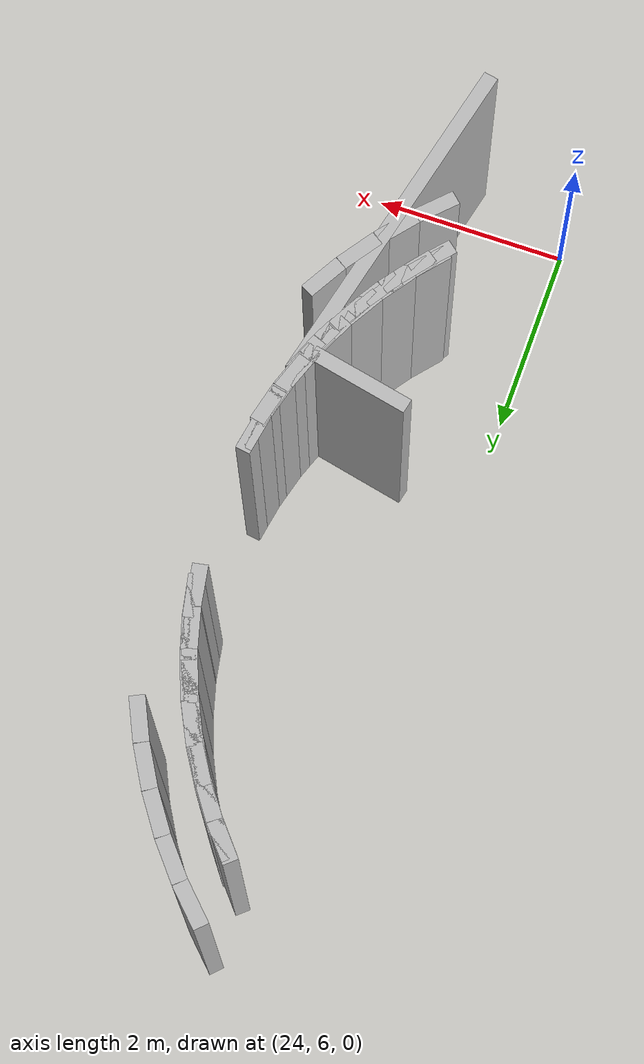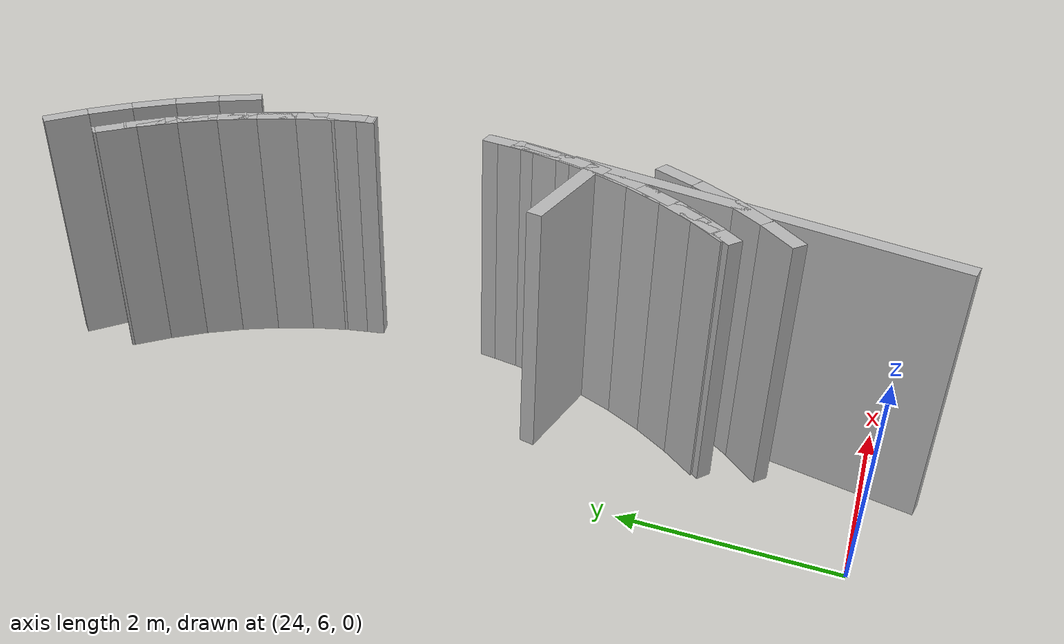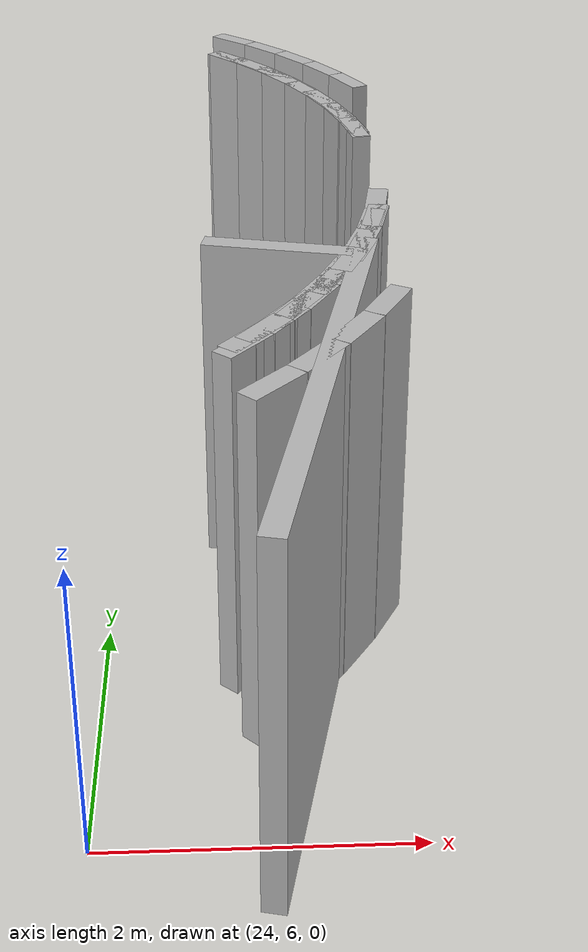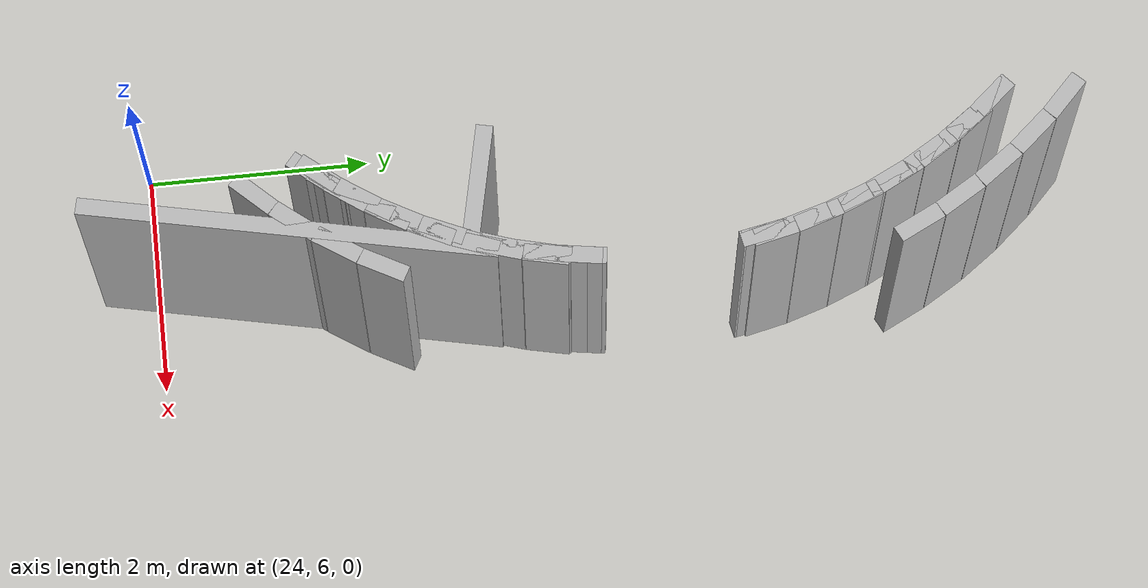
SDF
<sdf version="1.6">
 <model name="sps_2304">
  <static>1</static>
  <allow_auto_disable>0</allow_auto_disable>
  <link name="Wall10502">
   <collision name="collision"><geometry><box><size>0.39937 0.15 2.5</size></box></geometry></collision>
   <visual name="visual">
    <geometry><box><size>0.39937 0.15 2.5</size></box></geometry>
    <transparency>0.0</transparency>
   </visual>
   <pose>24.9521 7.53938 1.25 0 -0 0.861225</pose>
  </link>
  <link name="Wall10503">
   <collision name="collision"><geometry><box><size>0.399517 0.15 2.5</size></box></geometry></collision>
   <visual name="visual">
    <geometry><box><size>0.399517 0.15 2.5</size></box></geometry>
    <transparency>0.0</transparency>
   </visual>
   <pose>25.1987 7.85319 1.25 0 -0 0.948593</pose>
  </link>
  <link name="Wall10504">
   <collision name="collision"><geometry><box><size>0.399497 0.15 2.5</size></box></geometry></collision>
   <visual name="visual">
    <geometry><box><size>0.399497 0.15 2.5</size></box></geometry>
    <transparency>0.0</transparency>
   </visual>
   <pose>25.4169 8.18739 1.25 0 -0 1.03617</pose>
  </link>
  <link name="Wall10505">
   <collision name="collision"><geometry><box><size>0.399527 0.15 2.5</size></box></geometry></collision>
   <visual name="visual">
    <geometry><box><size>0.399527 0.15 2.5</size></box></geometry>
    <transparency>0.0</transparency>
   </visual>
   <pose>25.605 8.53938 1.25 0 -0 1.12355</pose>
  </link>
  <link name="Wall10506">
   <collision name="collision"><geometry><box><size>0.399357 0.15 2.5</size></box></geometry></collision>
   <visual name="visual">
    <geometry><box><size>0.399357 0.15 2.5</size></box></geometry>
    <transparency>0.0</transparency>
   </visual>
   <pose>25.7617 8.90639 1.25 0 -0 1.21095</pose>
  </link>
  <link name="Wall10507">
   <collision name="collision"><geometry><box><size>3.65467 0.15 2.5</size></box></geometry></collision>
   <visual name="visual">
    <geometry><box><size>3.65467 0.15 2.5</size></box></geometry>
    <transparency>0.0</transparency>
   </visual>
   <pose>25.4461 7.30717 1.25 0 0 -1.78363</pose>
  </link>
  <link name="Wall10574">
   <collision name="collision"><geometry><box><size>0.39686 0.15 2.5</size></box></geometry></collision>
   <visual name="visual">
    <geometry><box><size>0.39686 0.15 2.5</size></box></geometry>
    <transparency>0.0</transparency>
   </visual>
   <pose>25.0906 13.2434 1.25 0 0 -0.916929</pose>
  </link>
  <link name="Wall10575">
   <collision name="collision"><geometry><box><size>0.396997 0.15 2.5</size></box></geometry></collision>
   <visual name="visual">
    <geometry><box><size>0.396997 0.15 2.5</size></box></geometry>
    <transparency>0.0</transparency>
   </visual>
   <pose>25.318 12.9185 1.25 0 0 -1.00335</pose>
  </link>
  <link name="Wall10576">
   <collision name="collision"><geometry><box><size>0.396928 0.15 2.5</size></box></geometry></collision>
   <visual name="visual">
    <geometry><box><size>0.396928 0.15 2.5</size></box></geometry>
    <transparency>0.0</transparency>
   </visual>
   <pose>25.5161 12.575 1.25 0 0 -1.09168</pose>
  </link>
  <link name="Wall10577">
   <collision name="collision"><geometry><box><size>0.396955 0.15 2.5</size></box></geometry></collision>
   <visual name="visual">
    <geometry><box><size>0.396955 0.15 2.5</size></box></geometry>
    <transparency>0.0</transparency>
   </visual>
   <pose>25.6836 12.2155 1.25 0 0 -1.17824</pose>
  </link>
  <link name="Wall10578">
   <collision name="collision"><geometry><box><size>0.396978 0.15 2.5</size></box></geometry></collision>
   <visual name="visual">
    <geometry><box><size>0.396978 0.15 2.5</size></box></geometry>
    <transparency>0.0</transparency>
   </visual>
   <pose>25.8192 11.8428 1.25 0 0 -1.26533</pose>
  </link>
  <link name="Wall10579">
   <collision name="collision"><geometry><box><size>0.39702 0.15 2.5</size></box></geometry></collision>
   <visual name="visual">
    <geometry><box><size>0.39702 0.15 2.5</size></box></geometry>
    <transparency>0.0</transparency>
   </visual>
   <pose>25.9218 11.4597 1.25 0 0 -1.35293</pose>
  </link>
  <link name="Wall10584">
   <collision name="collision"><geometry><box><size>0.397039 0.15 2.5</size></box></geometry></collision>
   <visual name="visual">
    <geometry><box><size>0.397039 0.15 2.5</size></box></geometry>
    <transparency>0.0</transparency>
   </visual>
   <pose>25.9212 9.4919 1.25 0 0 -1.7896</pose>
  </link>
  <link name="Wall10585">
   <collision name="collision"><geometry><box><size>0.396996 0.15 2.5</size></box></geometry></collision>
   <visual name="visual">
    <geometry><box><size>0.396996 0.15 2.5</size></box></geometry>
    <transparency>0.0</transparency>
   </visual>
   <pose>25.8184 9.10881 1.25 0 0 -1.87641</pose>
  </link>
  <link name="Wall10586">
   <collision name="collision"><geometry><box><size>0.396889 0.15 2.5</size></box></geometry></collision>
   <visual name="visual">
    <geometry><box><size>0.396889 0.15 2.5</size></box></geometry>
    <transparency>0.0</transparency>
   </visual>
   <pose>25.6826 8.73619 1.25 0 0 -1.96375</pose>
  </link>
  <link name="Wall10587">
   <collision name="collision"><geometry><box><size>0.397071 0.15 2.5</size></box></geometry></collision>
   <visual name="visual">
    <geometry><box><size>0.397071 0.15 2.5</size></box></geometry>
    <transparency>0.0</transparency>
   </visual>
   <pose>25.5149 8.37678 1.25 0 0 -2.05094</pose>
  </link>
  <link name="Wall10588">
   <collision name="collision"><geometry><box><size>0.396843 0.15 2.5</size></box></geometry></collision>
   <visual name="visual">
    <geometry><box><size>0.396843 0.15 2.5</size></box></geometry>
    <transparency>0.0</transparency>
   </visual>
   <pose>25.3166 8.0334 1.25 0 0 -2.13849</pose>
  </link>
  <link name="Wall10589">
   <collision name="collision"><geometry><box><size>0.396974 0.15 2.5</size></box></geometry></collision>
   <visual name="visual">
    <geometry><box><size>0.396974 0.15 2.5</size></box></geometry>
    <transparency>0.0</transparency>
   </visual>
   <pose>25.089 7.70869 1.25 0 0 -2.2258</pose>
  </link>
  <link name="Wall11253">
   <collision name="collision"><geometry><box><size>0.393527 0.15 2.5</size></box></geometry></collision>
   <visual name="visual">
    <geometry><box><size>0.393527 0.15 2.5</size></box></geometry>
    <transparency>0.0</transparency>
   </visual>
   <pose>24.8966 13.4704 1.25 0 0 -0.855205</pose>
  </link>
  <link name="Wall11254">
   <collision name="collision"><geometry><box><size>0.393266 0.15 2.5</size></box></geometry></collision>
   <visual name="visual">
    <geometry><box><size>0.393266 0.15 2.5</size></box></geometry>
    <transparency>0.0</transparency>
   </visual>
   <pose>25.1413 13.1629 1.25 0 0 -0.94176</pose>
  </link>
  <link name="Wall11255">
   <collision name="collision"><geometry><box><size>0.393389 0.15 2.5</size></box></geometry></collision>
   <visual name="visual">
    <geometry><box><size>0.393389 0.15 2.5</size></box></geometry>
    <transparency>0.0</transparency>
   </visual>
   <pose>25.3586 12.8355 1.25 0 0 -1.02804</pose>
  </link>
  <link name="Wall11256">
   <collision name="collision"><geometry><box><size>0.393562 0.15 2.5</size></box></geometry></collision>
   <visual name="visual">
    <geometry><box><size>0.393562 0.15 2.5</size></box></geometry>
    <transparency>0.0</transparency>
   </visual>
   <pose>25.5468 12.4904 1.25 0 0 -1.11506</pose>
  </link>
  <link name="Wall11257">
   <collision name="collision"><geometry><box><size>0.3933 0.15 2.5</size></box></geometry></collision>
   <visual name="visual">
    <geometry><box><size>0.3933 0.15 2.5</size></box></geometry>
    <transparency>0.0</transparency>
   </visual>
   <pose>25.7045 12.1303 1.25 0 0 -1.20133</pose>
  </link>
  <link name="Wall11258">
   <collision name="collision"><geometry><box><size>0.39344 0.15 2.5</size></box></geometry></collision>
   <visual name="visual">
    <geometry><box><size>0.39344 0.15 2.5</size></box></geometry>
    <transparency>0.0</transparency>
   </visual>
   <pose>25.8304 11.758 1.25 0 0 -1.28796</pose>
  </link>
  <link name="Wall11259">
   <collision name="collision"><geometry><box><size>0.393334 0.15 2.5</size></box></geometry></collision>
   <visual name="visual">
    <geometry><box><size>0.393334 0.15 2.5</size></box></geometry>
    <transparency>0.0</transparency>
   </visual>
   <pose>25.9236 11.3762 1.25 0 0 -1.3748</pose>
  </link>
  <link name="Wall11263">
   <collision name="collision"><geometry><box><size>0.393221 0.15 2.5</size></box></geometry></collision>
   <visual name="visual">
    <geometry><box><size>0.393221 0.15 2.5</size></box></geometry>
    <transparency>0.0</transparency>
   </visual>
   <pose>25.9593 9.8119 1.25 0 0 -1.72099</pose>
  </link>
  <link name="Wall11264">
   <collision name="collision"><geometry><box><size>0.393615 0.15 2.5</size></box></geometry></collision>
   <visual name="visual">
    <geometry><box><size>0.393615 0.15 2.5</size></box></geometry>
    <transparency>0.0</transparency>
   </visual>
   <pose>25.8837 9.42619 1.25 0 0 -1.80761</pose>
  </link>
  <link name="Wall11265">
   <collision name="collision"><geometry><box><size>0.393278 0.15 2.5</size></box></geometry></collision>
   <visual name="visual">
    <geometry><box><size>0.393278 0.15 2.5</size></box></geometry>
    <transparency>0.0</transparency>
   </visual>
   <pose>25.7749 9.04848 1.25 0 0 -1.8949</pose>
  </link>
  <link name="Wall11266">
   <collision name="collision"><geometry><box><size>1.04191 0.15 2.5</size></box></geometry></collision>
   <visual name="visual">
    <geometry><box><size>1.04191 0.15 2.5</size></box></geometry>
    <transparency>0.0</transparency>
   </visual>
   <pose>25.2031 8.97218 1.25 0 -0 2.92863</pose>
  </link>
  <link name="Wall16809">
   <collision name="collision"><geometry><box><size>0.396843 0.15 2.5</size></box></geometry></collision>
   <visual name="visual">
    <geometry><box><size>0.396843 0.15 2.5</size></box></geometry>
    <transparency>0.0</transparency>
   </visual>
   <pose>25.3086 8.05299 1.25 0 -0 1.0031</pose>
  </link>
  <link name="Wall16810">
   <collision name="collision"><geometry><box><size>0.396908 0.15 2.5</size></box></geometry></collision>
   <visual name="visual">
    <geometry><box><size>0.396908 0.15 2.5</size></box></geometry>
    <transparency>0.0</transparency>
   </visual>
   <pose>25.5069 8.39628 1.25 0 -0 1.09044</pose>
  </link>
  <link name="Wall16811">
   <collision name="collision"><geometry><box><size>0.397058 0.15 2.5</size></box></geometry></collision>
   <visual name="visual">
    <geometry><box><size>0.397058 0.15 2.5</size></box></geometry>
    <transparency>0.0</transparency>
   </visual>
   <pose>25.6746 8.75569 1.25 0 -0 1.17802</pose>
  </link>
  <link name="Wall16812">
   <collision name="collision"><geometry><box><size>0.396996 0.15 2.5</size></box></geometry></collision>
   <visual name="visual">
    <geometry><box><size>0.396996 0.15 2.5</size></box></geometry>
    <transparency>0.0</transparency>
   </visual>
   <pose>25.8104 9.1284 1.25 0 -0 1.26519</pose>
  </link>
  <link name="Wall16813">
   <collision name="collision"><geometry><box><size>0.397 0.15 2.5</size></box></geometry></collision>
   <visual name="visual">
    <geometry><box><size>0.397 0.15 2.5</size></box></geometry>
    <transparency>0.0</transparency>
   </visual>
   <pose>25.9131 9.51149 1.25 0 -0 1.35244</pose>
  </link>
  <link name="Wall16818">
   <collision name="collision"><geometry><box><size>0.39702 0.15 2.5</size></box></geometry></collision>
   <visual name="visual">
    <geometry><box><size>0.39702 0.15 2.5</size></box></geometry>
    <transparency>0.0</transparency>
   </visual>
   <pose>25.9135 11.4793 1.25 0 -0 1.78866</pose>
  </link>
  <link name="Wall16819">
   <collision name="collision"><geometry><box><size>0.396978 0.15 2.5</size></box></geometry></collision>
   <visual name="visual">
    <geometry><box><size>0.396978 0.15 2.5</size></box></geometry>
    <transparency>0.0</transparency>
   </visual>
   <pose>25.8109 11.8624 1.25 0 -0 1.87626</pose>
  </link>
  <link name="Wall16820">
   <collision name="collision"><geometry><box><size>0.396932 0.15 2.5</size></box></geometry></collision>
   <visual name="visual">
    <geometry><box><size>0.396932 0.15 2.5</size></box></geometry>
    <transparency>0.0</transparency>
   </visual>
   <pose>25.6753 12.2351 1.25 0 -0 1.96321</pose>
  </link>
  <link name="Wall16821">
   <collision name="collision"><geometry><box><size>0.39685 0.15 2.5</size></box></geometry></collision>
   <visual name="visual">
    <geometry><box><size>0.39685 0.15 2.5</size></box></geometry>
    <transparency>0.0</transparency>
   </visual>
   <pose>25.5079 12.5945 1.25 0 -0 2.05054</pose>
  </link>
  <link name="Wall16822">
   <collision name="collision"><geometry><box><size>0.397053 0.15 2.5</size></box></geometry></collision>
   <visual name="visual">
    <geometry><box><size>0.397053 0.15 2.5</size></box></geometry>
    <transparency>0.0</transparency>
   </visual>
   <pose>25.3097 12.938 1.25 0 -0 2.13761</pose>
  </link>
  <link name="Wall16823">
   <collision name="collision"><geometry><box><size>0.397008 0.15 2.5</size></box></geometry></collision>
   <visual name="visual">
    <geometry><box><size>0.397008 0.15 2.5</size></box></geometry>
    <transparency>0.0</transparency>
   </visual>
   <pose>25.0823 13.263 1.25 0 -0 2.22515</pose>
  </link>
  <link name="Wall16880">
   <collision name="collision"><geometry><box><size>0.39712 0.15 2.5</size></box></geometry></collision>
   <visual name="visual">
    <geometry><box><size>0.39712 0.15 2.5</size></box></geometry>
    <transparency>0.0</transparency>
   </visual>
   <pose>25.081 7.72819 1.25 0 -0 0.916075</pose>
  </link>
  <link name="Wall24010">
   <collision name="collision"><geometry><box><size>0.399974 0.15 2.5</size></box></geometry></collision>
   <visual name="visual">
    <geometry><box><size>0.399974 0.15 2.5</size></box></geometry>
    <transparency>0.0</transparency>
   </visual>
   <pose>24.9804 7.6122 1.25 0 -0 0.884616</pose>
  </link>
  <link name="Wall24011">
   <collision name="collision"><geometry><box><size>0.399661 0.15 2.5</size></box></geometry></collision>
   <visual name="visual">
    <geometry><box><size>0.399661 0.15 2.5</size></box></geometry>
    <transparency>0.0</transparency>
   </visual>
   <pose>25.2197 7.93202 1.25 0 -0 0.972332</pose>
  </link>
  <link name="Wall24012">
   <collision name="collision"><geometry><box><size>0.39987 0.15 2.5</size></box></geometry></collision>
   <visual name="visual">
    <geometry><box><size>0.39987 0.15 2.5</size></box></geometry>
    <transparency>0.0</transparency>
   </visual>
   <pose>25.43 8.2715 1.25 0 -0 1.05962</pose>
  </link>
  <link name="Wall24013">
   <collision name="collision"><geometry><box><size>0.399809 0.15 2.5</size></box></geometry></collision>
   <visual name="visual">
    <geometry><box><size>0.399809 0.15 2.5</size></box></geometry>
    <transparency>0.0</transparency>
   </visual>
   <pose>25.6099 8.62819 1.25 0 -0 1.14812</pose>
  </link>
  <link name="Wall24014">
   <collision name="collision"><geometry><box><size>0.399778 0.15 2.5</size></box></geometry></collision>
   <visual name="visual">
    <geometry><box><size>0.399778 0.15 2.5</size></box></geometry>
    <transparency>0.0</transparency>
   </visual>
   <pose>25.7576 8.99928 1.25 0 -0 1.23587</pose>
  </link>
  <link name="Wall24015">
   <collision name="collision"><geometry><box><size>0.399954 0.15 2.5</size></box></geometry></collision>
   <visual name="visual">
    <geometry><box><size>0.399954 0.15 2.5</size></box></geometry>
    <transparency>0.0</transparency>
   </visual>
   <pose>25.8722 9.38197 1.25 0 -0 1.32382</pose>
  </link>
  <link name="Wall24016">
   <collision name="collision"><geometry><box><size>0.399656 0.15 2.5</size></box></geometry></collision>
   <visual name="visual">
    <geometry><box><size>0.399656 0.15 2.5</size></box></geometry>
    <transparency>0.0</transparency>
   </visual>
   <pose>25.9528 9.77318 1.25 0 -0 1.41145</pose>
  </link>
  <link name="Wall24020">
   <collision name="collision"><geometry><box><size>0.399755 0.15 2.5</size></box></geometry></collision>
   <visual name="visual">
    <geometry><box><size>0.399755 0.15 2.5</size></box></geometry>
    <transparency>0.0</transparency>
   </visual>
   <pose>25.9263 11.3629 1.25 0 -0 1.76298</pose>
  </link>
  <link name="Wall24021">
   <collision name="collision"><geometry><box><size>0.399885 0.15 2.5</size></box></geometry></collision>
   <visual name="visual">
    <geometry><box><size>0.399885 0.15 2.5</size></box></geometry>
    <transparency>0.0</transparency>
   </visual>
   <pose>25.8327 11.7512 1.25 0 -0 1.85165</pose>
  </link>
  <link name="Wall24022">
   <collision name="collision"><geometry><box><size>0.399916 0.15 2.5</size></box></geometry></collision>
   <visual name="visual">
    <geometry><box><size>0.399916 0.15 2.5</size></box></geometry>
    <transparency>0.0</transparency>
   </visual>
   <pose>25.7053 12.1299 1.25 0 -0 1.93861</pose>
  </link>
  <link name="Wall24023">
   <collision name="collision"><geometry><box><size>0.399757 0.15 2.5</size></box></geometry></collision>
   <visual name="visual">
    <geometry><box><size>0.399757 0.15 2.5</size></box></geometry>
    <transparency>0.0</transparency>
   </visual>
   <pose>25.5453 12.4959 1.25 0 -0 2.02727</pose>
  </link>
  <link name="Wall24024">
   <collision name="collision"><geometry><box><size>0.399796 0.15 2.5</size></box></geometry></collision>
   <visual name="visual">
    <geometry><box><size>0.399796 0.15 2.5</size></box></geometry>
    <transparency>0.0</transparency>
   </visual>
   <pose>25.3538 12.8464 1.25 0 -0 2.11441</pose>
  </link>
  <link name="Wall24025">
   <collision name="collision"><geometry><box><size>0.399708 0.15 2.5</size></box></geometry></collision>
   <visual name="visual">
    <geometry><box><size>0.399708 0.15 2.5</size></box></geometry>
    <transparency>0.0</transparency>
   </visual>
   <pose>25.1323 13.1787 1.25 0 -0 2.20303</pose>
  </link>
  <link name="Wall24026">
   <collision name="collision"><geometry><box><size>0.39995 0.15 2.5</size></box></geometry></collision>
   <visual name="visual">
    <geometry><box><size>0.39995 0.15 2.5</size></box></geometry>
    <transparency>0.0</transparency>
   </visual>
   <pose>24.8824 13.4903 1.25 0 -0 2.29043</pose>
  </link>
  <link name="Wall29032">
   <collision name="collision"><geometry><box><size>0.435155 0.15 2.5</size></box></geometry></collision>
   <visual name="visual">
    <geometry><box><size>0.435155 0.15 2.5</size></box></geometry>
    <transparency>0.0</transparency>
   </visual>
   <pose>25.1087 7.04588 1.25 0 -0 0.812676</pose>
  </link>
  <link name="Wall29033">
   <collision name="collision"><geometry><box><size>0.435305 0.15 2.5</size></box></geometry></collision>
   <visual name="visual">
    <geometry><box><size>0.435305 0.15 2.5</size></box></geometry>
    <transparency>0.0</transparency>
   </visual>
   <pose>25.3935 7.37437 1.25 0 -0 0.900063</pose>
  </link>
  <link name="Wall29034">
   <collision name="collision"><geometry><box><size>0.435326 0.15 2.5</size></box></geometry></collision>
   <visual name="visual">
    <geometry><box><size>0.435326 0.15 2.5</size></box></geometry>
    <transparency>0.0</transparency>
   </visual>
   <pose>25.6489 7.72639 1.25 0 -0 0.986216</pose>
  </link>
  <link name="Wall29035">
   <collision name="collision"><geometry><box><size>0.435183 0.15 2.5</size></box></geometry></collision>
   <visual name="visual">
    <geometry><box><size>0.435183 0.15 2.5</size></box></geometry>
    <transparency>0.0</transparency>
   </visual>
   <pose>25.8729 8.0991 1.25 0 -0 1.07308</pose>
  </link>
  <link name="Wall29046">
   <collision name="collision"><geometry><box><size>0.435352 0.15 2.5</size></box></geometry></collision>
   <visual name="visual">
    <geometry><box><size>0.435352 0.15 2.5</size></box></geometry>
    <transparency>0.0</transparency>
   </visual>
   <pose>25.9679 12.7035 1.25 0 -0 2.02711</pose>
  </link>
  <link name="Wall29047">
   <collision name="collision"><geometry><box><size>0.435269 0.15 2.5</size></box></geometry></collision>
   <visual name="visual">
    <geometry><box><size>0.435269 0.15 2.5</size></box></geometry>
    <transparency>0.0</transparency>
   </visual>
   <pose>25.7595 13.0852 1.25 0 -0 2.11398</pose>
  </link>
  <link name="Wall29048">
   <collision name="collision"><geometry><box><size>0.435223 0.15 2.5</size></box></geometry></collision>
   <visual name="visual">
    <geometry><box><size>0.435223 0.15 2.5</size></box></geometry>
    <transparency>0.0</transparency>
   </visual>
   <pose>25.5189 13.4474 1.25 0 -0 2.20027</pose>
  </link>
  <link name="Wall29049">
   <collision name="collision"><geometry><box><size>0.435285 0.15 2.5</size></box></geometry></collision>
   <visual name="visual">
    <geometry><box><size>0.435285 0.15 2.5</size></box></geometry>
    <transparency>0.0</transparency>
   </visual>
   <pose>25.2479 13.7874 1.25 0 -0 2.28753</pose>
  </link>
  <link name="Wall29050">
   <collision name="collision"><geometry><box><size>0.435236 0.15 2.5</size></box></geometry></collision>
   <visual name="visual">
    <geometry><box><size>0.435236 0.15 2.5</size></box></geometry>
    <transparency>0.0</transparency>
   </visual>
   <pose>24.9483 14.1026 1.25 0 -0 2.37414</pose>
  </link>
 </model>
</sdf>
